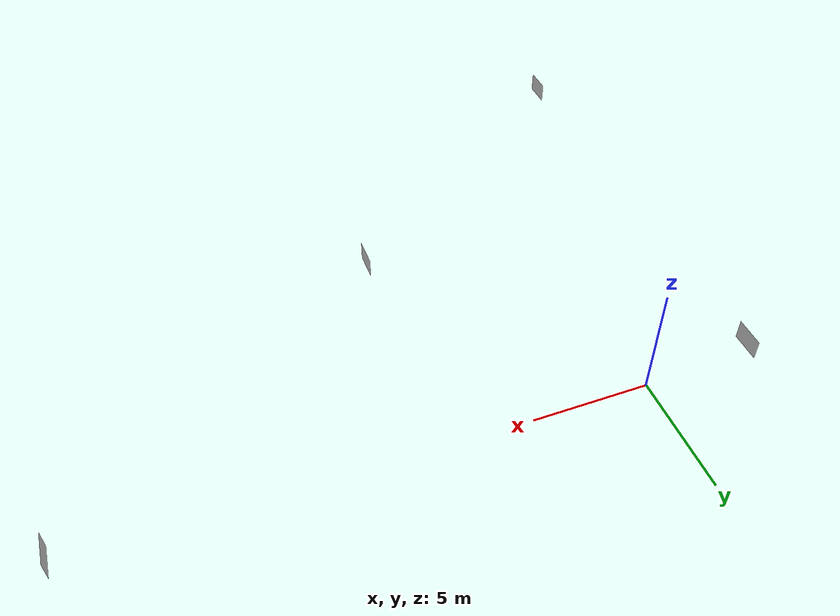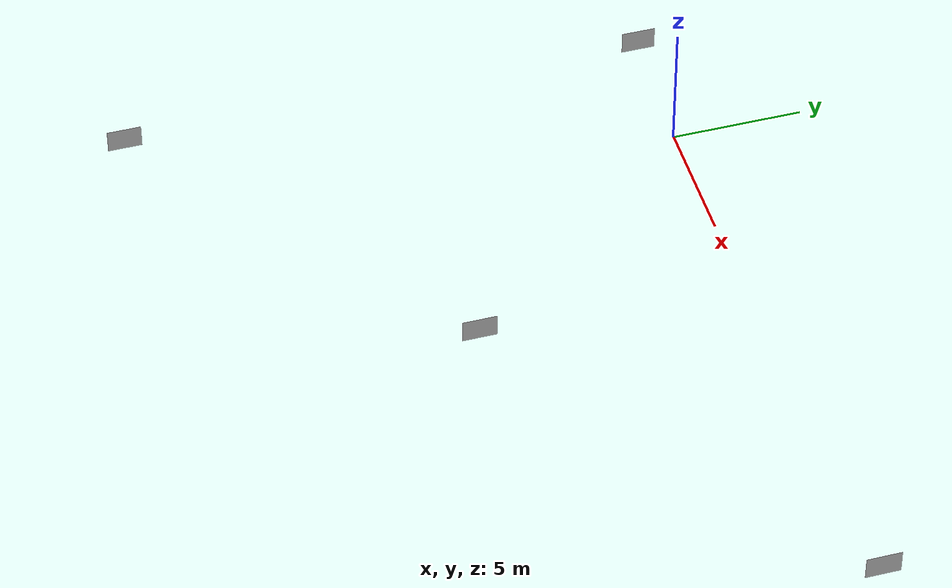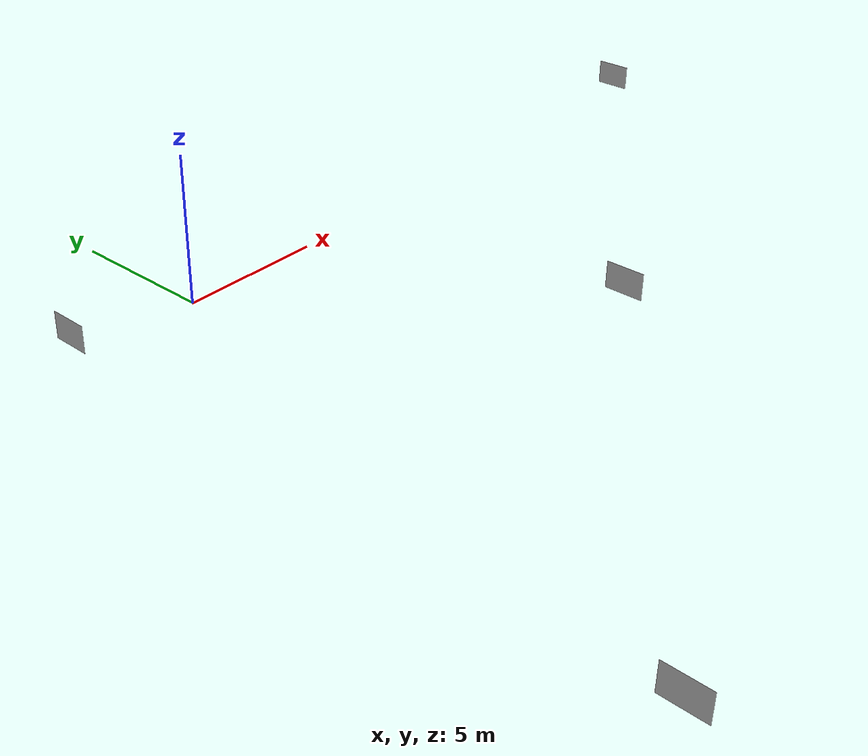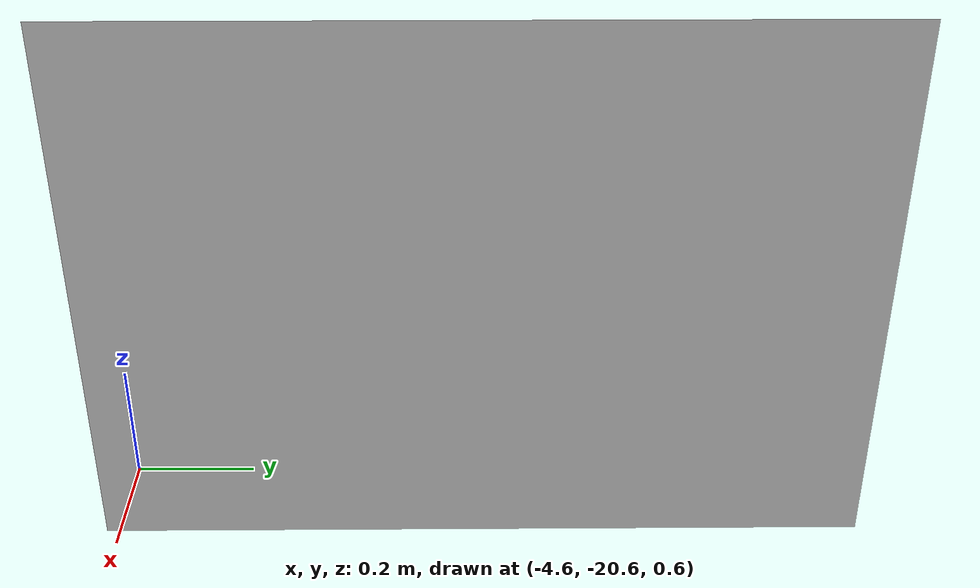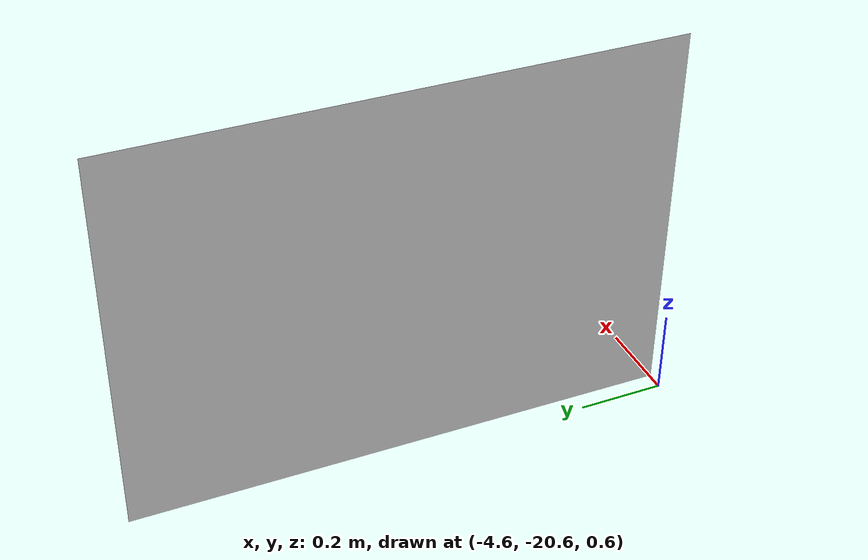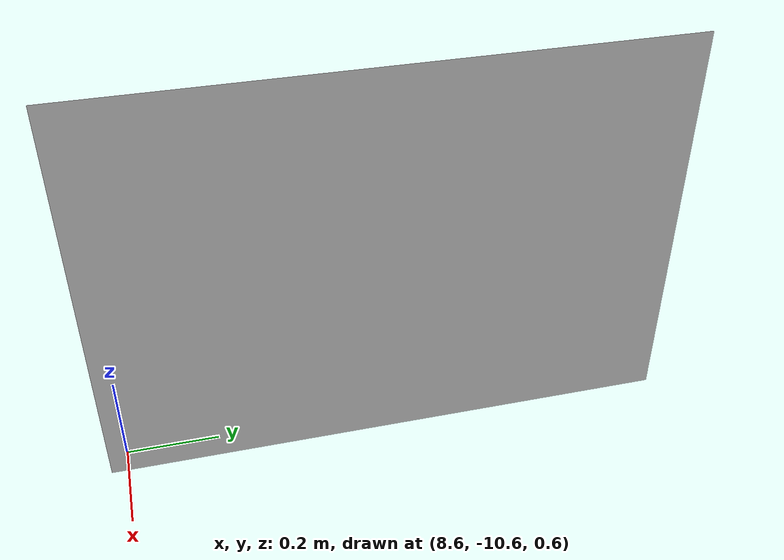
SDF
<sdf version="1.4">
 <world name="default">
  <scene>
   <ambient>0.500000 0.500000 0.500000 1.000000</ambient>
   <background>0.500000 0.500000 0.500000 1.000000</background>
   <shadows>0</shadows>
  </scene>
  <physics type="ode">
   <gravity>0.000000 0.000000 -9.800000</gravity>
   <ode>
    <solver><type>quick</type><iters>200</iters><sor>1.300000</sor></solver>
    <constraints>
     <cfm>0.000000</cfm>
     <erp>0.200000</erp>
     <contact_max_correcting_vel>100.000000</contact_max_correcting_vel>
     <contact_surface_layer>0.001000</contact_surface_layer>
    </constraints>
   </ode>
   <real_time_update_rate>1000.000000</real_time_update_rate>
   <max_step_size>0.002000</max_step_size>
  </physics>
  <model name="aruco_board1">
   <pose>-4.5 0 1.0  0 1.57 0</pose>
   <static>true</static>
   <link name="body">
    <visual name="visual">
     <geometry><mesh><uri>model://models/aruco_board/aruco_board.dae</uri></mesh></geometry>
     <material><script><name>__default__</name></script></material>
     <cast_shadows>0</cast_shadows>
    </visual>
   </link>
   <static>1</static>
  </model>
  <model name="aruco_board2">
   <pose>8.60 -10.0 1.0  0 1.57 0</pose>
   <static>true</static>
   <link name="body">
    <visual name="visual">
     <geometry><mesh><uri>model://models/aruco_board/aruco_board.dae</uri></mesh></geometry>
     <material><script><name>__default__</name></script></material>
     <cast_shadows>0</cast_shadows>
    </visual>
   </link>
   <static>1</static>
  </model>
  <model name="aruco_board3">
   <pose>23.0 0 1.0  0 1.57 3.14</pose>
   <static>true</static>
   <link name="body">
    <visual name="visual">
     <geometry><mesh><uri>model://models/aruco_board/aruco_board.dae</uri></mesh></geometry>
     <material><script><name>__default__</name></script></material>
     <cast_shadows>0</cast_shadows>
    </visual>
   </link>
   <static>1</static>
  </model>
  <model name="aruco_board4">
   <pose>-4.5 -20 1.0  0 1.57 0</pose>
   <static>true</static>
   <link name="body">
    <visual name="visual">
     <geometry><mesh><uri>model://models/aruco_board/aruco_board.dae</uri></mesh></geometry>
     <material><script><name>__default__</name></script></material>
     <cast_shadows>0</cast_shadows>
    </visual>
   </link>
   <static>1</static>
  </model>
  <light name="my_light_01" type="directional">
   <pose>0.000000 0.000000 30.000000 0.000000 -0.000000 0.000000</pose>
   <diffuse>0.900000 0.900000 0.900000 1.000000</diffuse>
   <specular>0.600000 0.600000 0.600000 1.000000</specular>
   <attenuation><range>20.000000</range></attenuation>
   <direction>0.000000 0.000000 -1.000000</direction>
   <cast_shadows>0</cast_shadows>
  </light>
  <light name="my_light_02" type="directional">
   <pose>0.000000 0.000000 30.000000 0.000000 -0.000000 0.000000</pose>
   <diffuse>0.900000 0.900000 0.900000 1.000000</diffuse>
   <specular>0.600000 0.600000 0.600000 1.000000</specular>
   <attenuation><range>20.000000</range></attenuation>
   <direction>-1.000000 0.000000 0.000000</direction>
   <cast_shadows>0</cast_shadows>
  </light>
  <light name="my_light_03" type="directional">
   <pose>0.000000 0.000000 30.000000 0.000000 -0.000000 0.000000</pose>
   <diffuse>0.900000 0.900000 0.900000 1.000000</diffuse>
   <specular>0.600000 0.600000 0.600000 1.000000</specular>
   <attenuation><range>20.000000</range></attenuation>
   <direction>0.000000 -1.000000 0.000000</direction>
   <cast_shadows>0</cast_shadows>
  </light>
  <light name="my_light_04" type="directional">
   <pose>0.000000 0.000000 30.000000 0.000000 -0.000000 0.000000</pose>
   <diffuse>0.900000 0.900000 0.900000 1.000000</diffuse>
   <specular>0.600000 0.600000 0.600000 1.000000</specular>
   <attenuation><range>20.000000</range></attenuation>
   <direction>0.000000 0.000000 1.000000</direction>
   <cast_shadows>0</cast_shadows>
  </light>
  <light name="my_light_05" type="directional">
   <pose>0.000000 0.000000 30.000000 0.000000 -0.000000 0.000000</pose>
   <diffuse>0.900000 0.900000 0.900000 1.000000</diffuse>
   <specular>0.600000 0.600000 0.600000 1.000000</specular>
   <attenuation><range>20.000000</range></attenuation>
   <direction>1.000000 0.000000 0.000000</direction>
   <cast_shadows>0</cast_shadows>
  </light>
  <light name="my_light_06" type="directional">
   <pose>0.000000 0.000000 30.000000 0.000000 -0.000000 0.000000</pose>
   <diffuse>0.900000 0.900000 0.900000 1.000000</diffuse>
   <specular>0.600000 0.600000 0.600000 1.000000</specular>
   <attenuation><range>20.000000</range></attenuation>
   <direction>0.000000 1.000000 0.000000</direction>
   <cast_shadows>0</cast_shadows>
  </light>
 </world>
</sdf>
